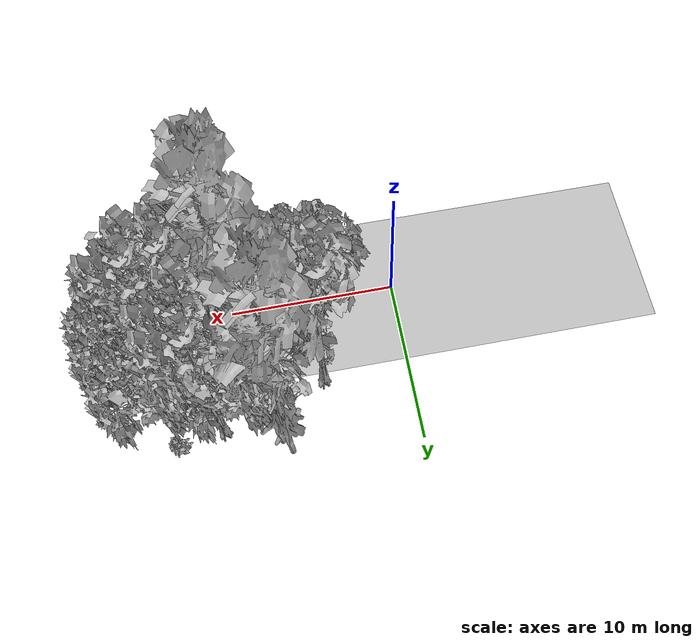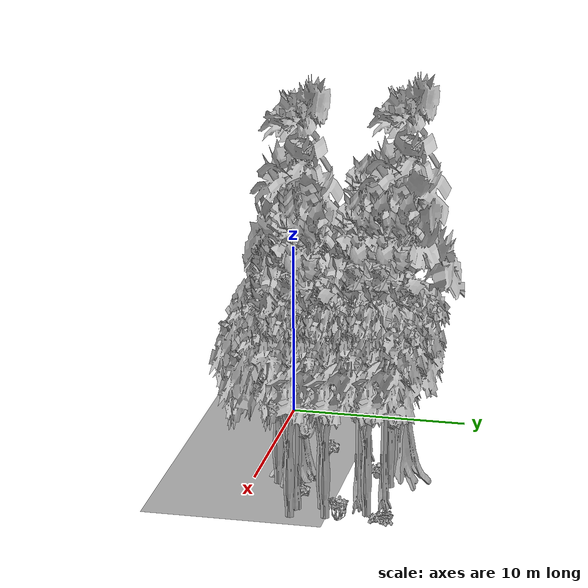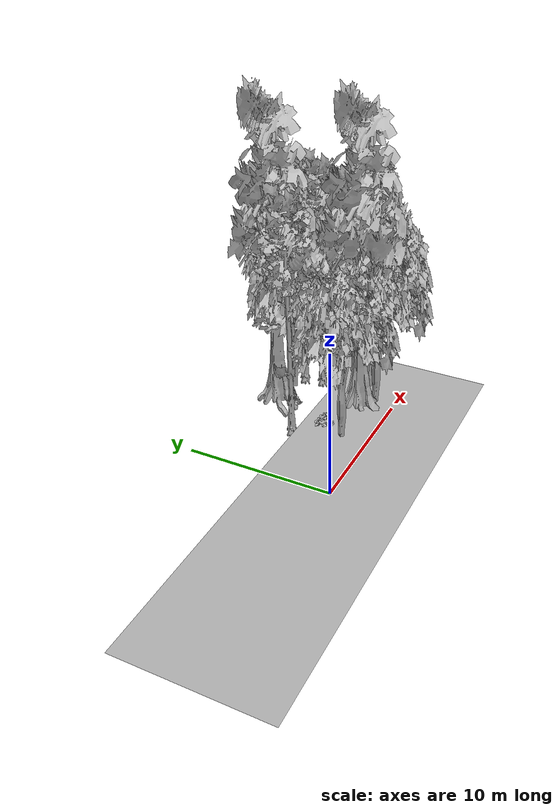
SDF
<sdf version="1.7">
 <world name="default">
  <model name="ground_plane">
   <static>1</static>
   <link name="link">
    <collision name="collision">
     <geometry><plane><normal>0 0 1</normal><size>100 100</size></plane></geometry>
     <surface><contact><ode><min_depth>0.01</min_depth><max_vel>0</max_vel></ode></contact></surface>
    </collision>
    <visual name="grass">
     <cast_shadows>0</cast_shadows>
     <geometry>
      <mesh>
       <scale>0.5814285714285714 0.18142857142857144 0.1</scale>
       <uri>file://grass_plane/meshes/grass_plane.dae</uri>
      </mesh>
     </geometry>
    </visual>
   </link>
  </model>
  <model name="Tree 53">
   <static>1</static>
   <pose>12.024891577038495 2.672143351821976 0 1.57079 -0 0</pose>
   <link name="link">
    <collision name="collision">
     <geometry><mesh><scale>3.5 5 3.5</scale><uri>model://tree_9/meshes/tree_9.obj</uri></mesh></geometry>
    </collision>
    <visual name="visual">
     <geometry><mesh><scale>3.5 5 3.5</scale><uri>model://tree_9/meshes/tree_9.obj</uri></mesh></geometry>
    </visual>
   </link>
  </model>
  <model name="Tree 70">
   <static>1</static>
   <pose>14.379854943526283 4.85291602756287 0 1.57079 -0 0</pose>
   <link name="link">
    <collision name="collision">
     <geometry><mesh><scale>3.5 5 3.5</scale><uri>model://tree_2/meshes/tree_2.obj</uri></mesh></geometry>
    </collision>
    <visual name="visual">
     <geometry><mesh><scale>3.5 5 3.5</scale><uri>model://tree_2/meshes/tree_2.obj</uri></mesh></geometry>
    </visual>
   </link>
  </model>
  <model name="Tree 110">
   <static>1</static>
   <pose>7.831832835367891 7.7616775637112845 0 1.57079 -0 0</pose>
   <link name="link">
    <collision name="collision">
     <geometry><mesh><scale>3.5 5 3.5</scale><uri>model://tree_4/meshes/tree_4.obj</uri></mesh></geometry>
    </collision>
    <visual name="visual">
     <geometry><mesh><scale>3.5 5 3.5</scale><uri>model://tree_4/meshes/tree_4.obj</uri></mesh></geometry>
    </visual>
   </link>
  </model>
  <model name="Tree 137">
   <static>1</static>
   <pose>13.608750022243001 3.106835212458275 0 1.57079 -0 0</pose>
   <link name="link">
    <collision name="collision">
     <geometry><mesh><scale>3.5 5 3.5</scale><uri>model://tree_9/meshes/tree_9.obj</uri></mesh></geometry>
    </collision>
    <visual name="visual">
     <geometry><mesh><scale>3.5 5 3.5</scale><uri>model://tree_9/meshes/tree_9.obj</uri></mesh></geometry>
    </visual>
   </link>
  </model>
  <model name="Tree 151">
   <static>1</static>
   <pose>11.167931153357003 2.625514607712219 0 1.57079 -0 0</pose>
   <link name="link">
    <collision name="collision">
     <geometry><mesh><scale>3.5 5 3.5</scale><uri>model://tree_2/meshes/tree_2.obj</uri></mesh></geometry>
    </collision>
    <visual name="visual">
     <geometry><mesh><scale>3.5 5 3.5</scale><uri>model://tree_2/meshes/tree_2.obj</uri></mesh></geometry>
    </visual>
   </link>
  </model>
  <model name="Tree 163">
   <static>1</static>
   <pose>14.603597060802358 2.9744115717337394 0 1.57079 -0 0</pose>
   <link name="link">
    <collision name="collision">
     <geometry><mesh><scale>3.5 5 3.5</scale><uri>model://tree_2/meshes/tree_2.obj</uri></mesh></geometry>
    </collision>
    <visual name="visual">
     <geometry><mesh><scale>3.5 5 3.5</scale><uri>model://tree_2/meshes/tree_2.obj</uri></mesh></geometry>
    </visual>
   </link>
  </model>
  <model name="Tree 196">
   <static>1</static>
   <pose>5.576088782339838 1.8483921257327403 0 1.57079 -0 0</pose>
   <link name="link">
    <collision name="collision">
     <geometry><mesh><scale>3.5 5 3.5</scale><uri>model://tree_2/meshes/tree_2.obj</uri></mesh></geometry>
    </collision>
    <visual name="visual">
     <geometry><mesh><scale>3.5 5 3.5</scale><uri>model://tree_2/meshes/tree_2.obj</uri></mesh></geometry>
    </visual>
   </link>
  </model>
  <model name="Tree 200">
   <static>1</static>
   <pose>11.550225709067568 6.101752379891224 0 1.57079 -0 0</pose>
   <link name="link">
    <collision name="collision">
     <geometry><mesh><scale>3.5 5 3.5</scale><uri>model://tree_9/meshes/tree_9.obj</uri></mesh></geometry>
    </collision>
    <visual name="visual">
     <geometry><mesh><scale>3.5 5 3.5</scale><uri>model://tree_9/meshes/tree_9.obj</uri></mesh></geometry>
    </visual>
   </link>
  </model>
  <model name="Tree 220">
   <static>1</static>
   <pose>13.230784983062286 4.440685392781859 0 1.57079 -0 0</pose>
   <link name="link">
    <collision name="collision">
     <geometry><mesh><scale>3.5 5 3.5</scale><uri>model://tree_2/meshes/tree_2.obj</uri></mesh></geometry>
    </collision>
    <visual name="visual">
     <geometry><mesh><scale>3.5 5 3.5</scale><uri>model://tree_2/meshes/tree_2.obj</uri></mesh></geometry>
    </visual>
   </link>
  </model>
  <model name="Tree 250">
   <static>1</static>
   <pose>9.665547129686857 7.453419984448924 0 1.57079 -0 0</pose>
   <link name="link">
    <collision name="collision">
     <geometry><mesh><scale>3.5 5 3.5</scale><uri>model://tree_2/meshes/tree_2.obj</uri></mesh></geometry>
    </collision>
    <visual name="visual">
     <geometry><mesh><scale>3.5 5 3.5</scale><uri>model://tree_2/meshes/tree_2.obj</uri></mesh></geometry>
    </visual>
   </link>
  </model>
  <model name="Tree 268">
   <static>1</static>
   <pose>9.642755568468992 2.2989608753261948 0 1.57079 -0 0</pose>
   <link name="link">
    <collision name="collision">
     <geometry><mesh><scale>3.5 5 3.5</scale><uri>model://tree_4/meshes/tree_4.obj</uri></mesh></geometry>
    </collision>
    <visual name="visual">
     <geometry><mesh><scale>3.5 5 3.5</scale><uri>model://tree_4/meshes/tree_4.obj</uri></mesh></geometry>
    </visual>
   </link>
  </model>
  <model name="Tree 329">
   <static>1</static>
   <pose>5.140809283788364 5.316321774529477 0 1.57079 -0 0</pose>
   <link name="link">
    <collision name="collision">
     <geometry><mesh><scale>3.5 5 3.5</scale><uri>model://tree_9/meshes/tree_9.obj</uri></mesh></geometry>
    </collision>
    <visual name="visual">
     <geometry><mesh><scale>3.5 5 3.5</scale><uri>model://tree_9/meshes/tree_9.obj</uri></mesh></geometry>
    </visual>
   </link>
  </model>
  <model name="Tree 341">
   <static>1</static>
   <pose>13.673282201980946 6.958214038290031 0 1.57079 -0 0</pose>
   <link name="link">
    <collision name="collision">
     <geometry><mesh><scale>3.5 5 3.5</scale><uri>model://tree_2/meshes/tree_2.obj</uri></mesh></geometry>
    </collision>
    <visual name="visual">
     <geometry><mesh><scale>3.5 5 3.5</scale><uri>model://tree_2/meshes/tree_2.obj</uri></mesh></geometry>
    </visual>
   </link>
  </model>
  <model name="Tree 402">
   <static>1</static>
   <pose>10.37737258086382 1.4305138731404519 0 1.57079 -0 0</pose>
   <link name="link">
    <collision name="collision">
     <geometry><mesh><scale>3.5 5 3.5</scale><uri>model://tree_2/meshes/tree_2.obj</uri></mesh></geometry>
    </collision>
    <visual name="visual">
     <geometry><mesh><scale>3.5 5 3.5</scale><uri>model://tree_2/meshes/tree_2.obj</uri></mesh></geometry>
    </visual>
   </link>
  </model>
  <model name="Tree 441">
   <static>1</static>
   <pose>11.351713925343553 7.439823411636578 0 1.57079 -0 0</pose>
   <link name="link">
    <collision name="collision">
     <geometry><mesh><scale>3.5 5 3.5</scale><uri>model://tree_9/meshes/tree_9.obj</uri></mesh></geometry>
    </collision>
    <visual name="visual">
     <geometry><mesh><scale>3.5 5 3.5</scale><uri>model://tree_9/meshes/tree_9.obj</uri></mesh></geometry>
    </visual>
   </link>
  </model>
  <model name="Bush 105">
   <static>1</static>
   <pose>6.183502806633534 3.3500623232038933 0 1.57079 -0 0</pose>
   <link name="link">
    <collision name="collision">
     <geometry><mesh><scale>2 2 2</scale><uri>model://bush_3/meshes/bush_3.obj</uri></mesh></geometry>
     <surface><contact><collide_without_contact>false</collide_without_contact></contact></surface>
    </collision>
    <visual name="visual">
     <geometry><mesh><scale>2 2 2</scale><uri>model://bush_3/meshes/bush_3.obj</uri></mesh></geometry>
    </visual>
   </link>
  </model>
  <model name="Bush 139">
   <static>1</static>
   <pose>13.887958626480888 7.922647693383109 0 1.57079 -0 0</pose>
   <link name="link">
    <collision name="collision">
     <geometry><mesh><scale>2 2 2</scale><uri>model://bush_2/meshes/bush_2.obj</uri></mesh></geometry>
     <surface><contact><collide_without_contact>false</collide_without_contact></contact></surface>
    </collision>
    <visual name="visual">
     <geometry><mesh><scale>2 2 2</scale><uri>model://bush_2/meshes/bush_2.obj</uri></mesh></geometry>
    </visual>
   </link>
  </model>
  <model name="Bush 156">
   <static>1</static>
   <pose>12.367091161512732 3.0104121272766164 0 1.57079 -0 0</pose>
   <link name="link">
    <collision name="collision">
     <geometry><mesh><scale>2 2 2</scale><uri>model://bush_3/meshes/bush_3.obj</uri></mesh></geometry>
     <surface><contact><collide_without_contact>false</collide_without_contact></contact></surface>
    </collision>
    <visual name="visual">
     <geometry><mesh><scale>2 2 2</scale><uri>model://bush_3/meshes/bush_3.obj</uri></mesh></geometry>
    </visual>
   </link>
  </model>
  <model name="Bush 196">
   <static>1</static>
   <pose>7.630925151116379 6.433372293920613 0 1.57079 -0 0</pose>
   <link name="link">
    <collision name="collision">
     <geometry><mesh><scale>2 2 2</scale><uri>model://bush_2/meshes/bush_2.obj</uri></mesh></geometry>
     <surface><contact><collide_without_contact>false</collide_without_contact></contact></surface>
    </collision>
    <visual name="visual">
     <geometry><mesh><scale>2 2 2</scale><uri>model://bush_2/meshes/bush_2.obj</uri></mesh></geometry>
    </visual>
   </link>
  </model>
  <model name="Bush 271">
   <static>1</static>
   <pose>14.082161632294117 7.665213678624038 0 1.57079 -0 0</pose>
   <link name="link">
    <collision name="collision">
     <geometry><mesh><scale>2 2 2</scale><uri>model://bush_2/meshes/bush_2.obj</uri></mesh></geometry>
     <surface><contact><collide_without_contact>false</collide_without_contact></contact></surface>
    </collision>
    <visual name="visual">
     <geometry><mesh><scale>2 2 2</scale><uri>model://bush_2/meshes/bush_2.obj</uri></mesh></geometry>
    </visual>
   </link>
  </model>
  <model name="Bush 289">
   <static>1</static>
   <pose>14.604786921754162 5.578647718605591 0 1.57079 -0 0</pose>
   <link name="link">
    <collision name="collision">
     <geometry><mesh><scale>2 2 2</scale><uri>model://bush_4/meshes/bush_4.obj</uri></mesh></geometry>
     <surface><contact><collide_without_contact>false</collide_without_contact></contact></surface>
    </collision>
    <visual name="visual">
     <geometry><mesh><scale>2 2 2</scale><uri>model://bush_4/meshes/bush_4.obj</uri></mesh></geometry>
    </visual>
   </link>
  </model>
  <model name="Bush 290">
   <static>1</static>
   <pose>9.323987992017997 3.071314043936301 0 1.57079 -0 0</pose>
   <link name="link">
    <collision name="collision">
     <geometry><mesh><scale>2 2 2</scale><uri>model://bush_2/meshes/bush_2.obj</uri></mesh></geometry>
     <surface><contact><collide_without_contact>false</collide_without_contact></contact></surface>
    </collision>
    <visual name="visual">
     <geometry><mesh><scale>2 2 2</scale><uri>model://bush_2/meshes/bush_2.obj</uri></mesh></geometry>
    </visual>
   </link>
  </model>
 </world>
</sdf>
